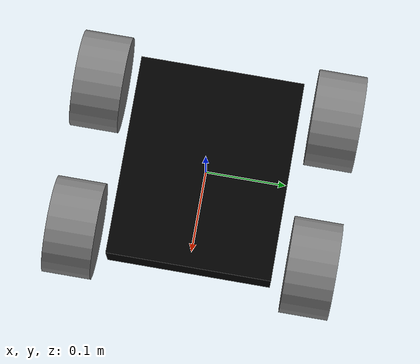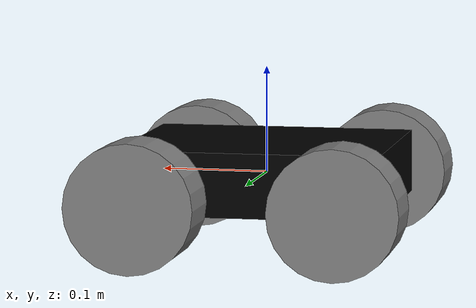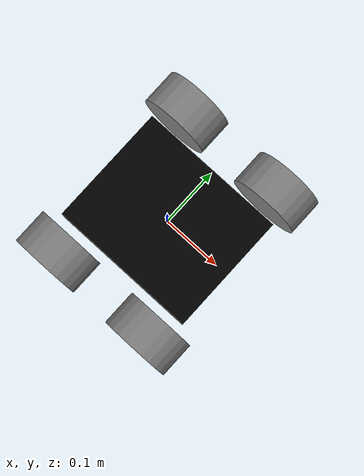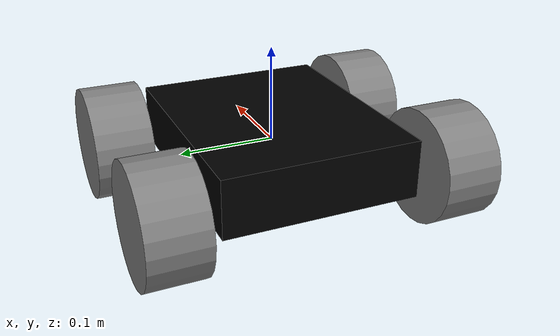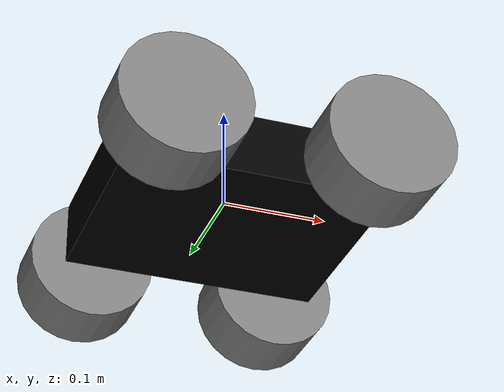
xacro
<?xml version="1.0"?>
<robot xmlns:xacro="http://www.ros.org/wiki/xacro"  name="4w_bot">

    <xacro:include filename="inertial_macros.xacro"/>

    <xacro:property name="robot_name" value="4w_bot" />

	<xacro:property name="chassis_mass" value="1"/>
	<xacro:property name="chassis_length" value="0.24765"/>
	<xacro:property name="chassis_width" value="0.2032"/>
	<xacro:property name="chassis_height" value="0.060325"/>

    <xacro:property name="wheel_mass" value="0.1"/>
	<xacro:property name="wheel_radius" value="0.060325"/>
    <xacro:property name="wheel_length" value="0.060325"/>
    <xacro:property name="wheel_chassis_distance" value="0.015875"/>
    <xacro:property name="wheel_x_distance" value="0.0936625"/>
    <xacro:property name="wheel_y_distance" value="${(chassis_width/2)+wheel_chassis_distance+(wheel_length/2)}"/>
    <xacro:property name="wheel_z_distance" value="0.01349375"/>
    <xacro:property name="wheel_joint_type" value="continuous"/>

    <material name="black">
        <color rgba="0 0 0 1"/>
    </material>

    <material name="gray">
        <color rgba="0.5 0.5 0.5 1"/>
    </material>

    <!-- Base link-->

    <link name="base_link">
    </link>

    <!--Chassis link-->

    <joint name="chassis_joint" type="${wheel_joint_type}">
        <parent link="base_link"/>
        <child link="chassis"/>
        <origin xyz="${-chassis_length/2} 0 ${-chassis_height/2}"/>
    </joint>

    <link name="chassis">
        <visual>
            <origin xyz="${chassis_length/2} 0 ${chassis_height/2}"/>
            <geometry>
                <box size="${chassis_length} ${chassis_width} ${chassis_height}"/>
            </geometry>
            <material name="black"/>
        </visual>
        <collision>
            <origin xyz="${chassis_length/2} 0 ${chassis_width/2}"/>
            <geometry>
                <box size="${chassis_length} ${chassis_width} ${chassis_height}"/>
            </geometry>
        </collision>
        <xacro:inertial_box mass= "${chassis_mass}" x="${chassis_length}" y="${chassis_width}" z="${chassis_height}">
            <origin xyz="${chassis_length/2} 0 ${chassis_width/2}" rpy="0 0 0"/>
        </xacro:inertial_box>
    </link>

    <gazebo reference="chassis">
        <material>Gazebo/Black</material>
    </gazebo>

    <!--Left front wheel link-->

    <joint name="left_front_wheel_joint" type="${wheel_joint_type}">
        <parent link="base_link"/>
        <child link="left_front_wheel"/>
        <origin xyz="${wheel_x_distance} ${wheel_y_distance} -${wheel_z_distance}" rpy="-${pi/2} 0 0"/>
        <axis xyz="0 0 1"/>
    </joint>

    <link name="left_front_wheel">
        <visual>
            <geometry>
                <cylinder radius="${wheel_radius}" length="${wheel_length}"/>
            </geometry>
            <material name="gray"/>
        </visual>
        <collision>
            <geometry>
                <cylinder radius="${wheel_radius}" length="${wheel_length}"/>
            </geometry>
        </collision>
        <xacro:inertial_cylinder mass="${wheel_mass}" radius="${wheel_radius}" length="${wheel_length}">
            <origin xyz="0 0 0" rpy="0 0 0"/>
        </xacro:inertial_cylinder>
    </link>

    <gazebo reference="left_front_wheel">
        <material>Gazebo/Gray</material>
    </gazebo>

    <!--right front wheel link-->

    <joint name="right_front_wheel_joint" type="${wheel_joint_type}">
        <parent link="base_link"/>
        <child link="right_front_wheel"/>
        <origin xyz="${wheel_x_distance} -${wheel_y_distance} -${wheel_z_distance}" rpy="${pi/2} 0 0"/>
        <axis xyz="0 0 1"/>
    </joint>

    <link name="right_front_wheel">
        <visual>
            <geometry>
                <cylinder radius="${wheel_radius}" length="${wheel_length}"/>
            </geometry>
            <material name="gray"/>
        </visual>
        <collision>
            <geometry>
                <cylinder radius="${wheel_radius}" length="${wheel_length}"/>
            </geometry>
        </collision>
        <xacro:inertial_cylinder mass="${wheel_mass}" radius="${wheel_radius}" length="${wheel_length}">
            <origin xyz="0 0 0" rpy="0 0 0"/>
        </xacro:inertial_cylinder>
    </link>

    <gazebo reference="right_front_wheel">
        <material>Gazebo/Gray</material>
    </gazebo>

    <!--Left rear wheel link-->

    <joint name="left_rear_wheel_joint" type="${wheel_joint_type}">
        <parent link="base_link"/>
        <child link="left_rear_wheel"/>
        <origin xyz="-${wheel_x_distance} ${wheel_y_distance} -${wheel_z_distance}" rpy="-${pi/2} 0 0"/>
        <axis xyz="0 0 1"/>
    </joint>

    <link name="left_rear_wheel">
        <visual>
            <geometry>
                <cylinder radius="${wheel_radius}" length="${wheel_length}"/>
            </geometry>
            <material name="gray"/>
        </visual>
        <collision>
            <geometry>
                <cylinder radius="${wheel_radius}" length="${wheel_length}"/>
            </geometry>
        </collision>
        <xacro:inertial_cylinder mass="${wheel_mass}" radius="${wheel_radius}" length="${wheel_length}">
            <origin xyz="0 0 0" rpy="0 0 0"/>
        </xacro:inertial_cylinder>
    </link>

    <gazebo reference="left_rear_wheel">
        <material>Gazebo/Gray</material>
    </gazebo>

    <!--right rear wheel link-->

    <joint name="right_rear_wheel_joint" type="${wheel_joint_type}">
        <parent link="base_link"/>
        <child link="right_rear_wheel"/>
        <origin xyz="-${wheel_x_distance} -${wheel_y_distance} -${wheel_z_distance}" rpy="${pi/2} 0 0"/>
        <axis xyz="0 0 1"/>
    </joint>

    <link name="right_rear_wheel">
        <visual>
            <geometry>
                <cylinder radius="${wheel_radius}" length="${wheel_length}"/>
            </geometry>
            <material name="gray"/>
        </visual>
        <collision>
            <geometry>
                <cylinder radius="${wheel_radius}" length="${wheel_length}"/>
            </geometry>
        </collision>
        <xacro:inertial_cylinder mass="${wheel_mass}" radius="${wheel_radius}" length="${wheel_length}">
            <origin xyz="0 0 0" rpy="0 0 0"/>
        </xacro:inertial_cylinder>
    </link>

    <gazebo reference="right_rear_wheel">
        <material>Gazebo/Gray</material>
    </gazebo>

</robot>

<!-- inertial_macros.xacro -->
<robot xmlns:xacro="http://www.ros.org/wiki/xacro" >

    <xacro:macro name="inertial_box" params="mass x y z *origin">
        <inertial>
            <xacro:insert_block name="origin"/>
            <mass value="${mass}" />
            <inertia ixx="${(1/12) * mass * (y*y+z*z)}" ixy="0.0" ixz="0.0"
                    iyy="${(1/12) * mass * (x*x+z*z)}" iyz="0.0"
                    izz="${(1/12) * mass * (x*x+y*y)}" />
        </inertial>
    </xacro:macro>

    <xacro:macro name="inertial_cylinder" params="mass length radius *origin">
        <inertial>
            <xacro:insert_block name="origin"/>
            <mass value="${mass}" />
            <inertia ixx="${(1/12) * mass * (3*radius*radius + length*length)}" ixy="0.0" ixz="0.0"
                    iyy="${(1/12) * mass * (3*radius*radius + length*length)}" iyz="0.0"
                    izz="${(1/2) * mass * (radius*radius)}" />
        </inertial>
    </xacro:macro>

</robot>
